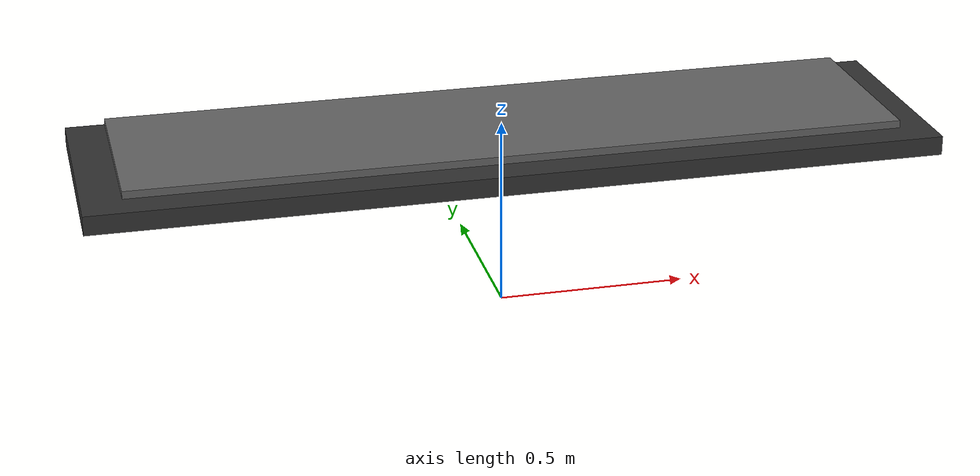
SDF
<?xml version="1.0"?>
<sdf version="1.6">
  <model name="conveyor_belt">

    <!--
      Keep the belt static=false so Gazebo simulates friction correctly.
      The chassis underneath is held in place by a fixed joint to the world.
    -->
    <static>false</static>

    <!-- ── Chassis (invisible, provides the fixed base) ──────────────────── -->
    <link name="chassis">
      <pose>0 0 0.45 0 0 0</pose>
      <inertial>
        <mass>50.0</mass>
        <inertia>
          <ixx>5.0</ixx><iyy>5.0</iyy><izz>5.0</izz>
          <ixy>0</ixy><ixz>0</ixz><iyz>0</iyz>
        </inertia>
      </inertial>
      <visual name="chassis_visual">
        <geometry>
          <box><size>2.2 0.6 0.05</size></box>
        </geometry>
        <material>
          <ambient>0.15 0.15 0.15 1</ambient>
          <diffuse>0.2  0.2  0.2  1</diffuse>
        </material>
      </visual>
      <collision name="chassis_collision">
        <geometry>
          <box><size>2.2 0.6 0.05</size></box>
        </geometry>
      </collision>
    </link>

    <!-- ── Belt surface ────────────────────────────────────────────────────── -->
    <link name="belt_link">
      <pose>0 0 0.5 0 0 0</pose>
      <inertial>
        <mass>5.0</mass>
        <inertia>
          <ixx>0.5</ixx><iyy>0.5</iyy><izz>0.5</izz>
          <ixy>0</ixy><ixz>0</ixz><iyz>0</iyz>
        </inertia>
      </inertial>

      <visual name="belt_visual">
        <geometry>
          <box><size>2.0 0.5 0.02</size></box>
        </geometry>
        <material>
          <ambient>0.3 0.3 0.3 1</ambient>
          <diffuse>0.4 0.4 0.4 1</diffuse>
        </material>
      </visual>

      <collision name="belt_collision">
        <geometry>
          <box><size>2.0 0.5 0.02</size></box>
        </geometry>
        <surface>
          <friction>
            <ode>
              <!-- High friction so products move reliably with the belt -->
              <mu>0.9</mu>
              <mu2>0.9</mu2>
              <!-- fdir1 sets the primary friction direction — along belt (X) -->
              <fdir1>1 0 0</fdir1>
            </ode>
          </friction>
          <contact>
            <ode>
              <kp>1000000.0</kp>
              <kd>100.0</kd>
            </ode>
          </contact>
        </surface>
      </collision>
    </link>

    <!-- ── Fix chassis to world ───────────────────────────────────────────── -->
    <joint name="chassis_to_world" type="fixed">
      <parent>world</parent>
      <child>chassis</child>
    </joint>

    <!-- ── Belt slides along X relative to chassis ───────────────────────── -->
    <joint name="belt_joint" type="prismatic">
      <parent>chassis</parent>
      <child>belt_link</child>
      <axis>
        <xyz>1 0 0</xyz>
        <limit>
          <!-- No hard position limits — the plugin manages velocity -->
          <lower>-1e16</lower>
          <upper>1e16</upper>
          <effort>100</effort>
          <velocity>2.0</velocity>
        </limit>
        <dynamics>
          <damping>10.0</damping>
          <friction>0.0</friction>
        </dynamics>
        <use_parent_model_frame>true</use_parent_model_frame>
      </axis>
    </joint>

    <!-- ── ROS2 conveyor plugins ──────────────────────────────────────────── -->

    <!-- Broadcasts belt_joint position/velocity as sensor_msgs/JointState. -->
    <plugin name="conveyor_joint_states" filename="libgazebo_ros_joint_state_publisher.so">
      <ros>
        <namespace>/conveyor</namespace>
        <remapping>joint_states:=joint_states</remapping>
      </ros>
      <update_rate>30</update_rate>
      <joint_name>belt_joint</joint_name>
    </plugin>

    <plugin name="conveyor_belt_control" filename="libconveyor_belt_plugin.so">
      <joint_name>belt_joint</joint_name>
      <initial_velocity>0.12</initial_velocity>
    </plugin>

  </model>
</sdf>
